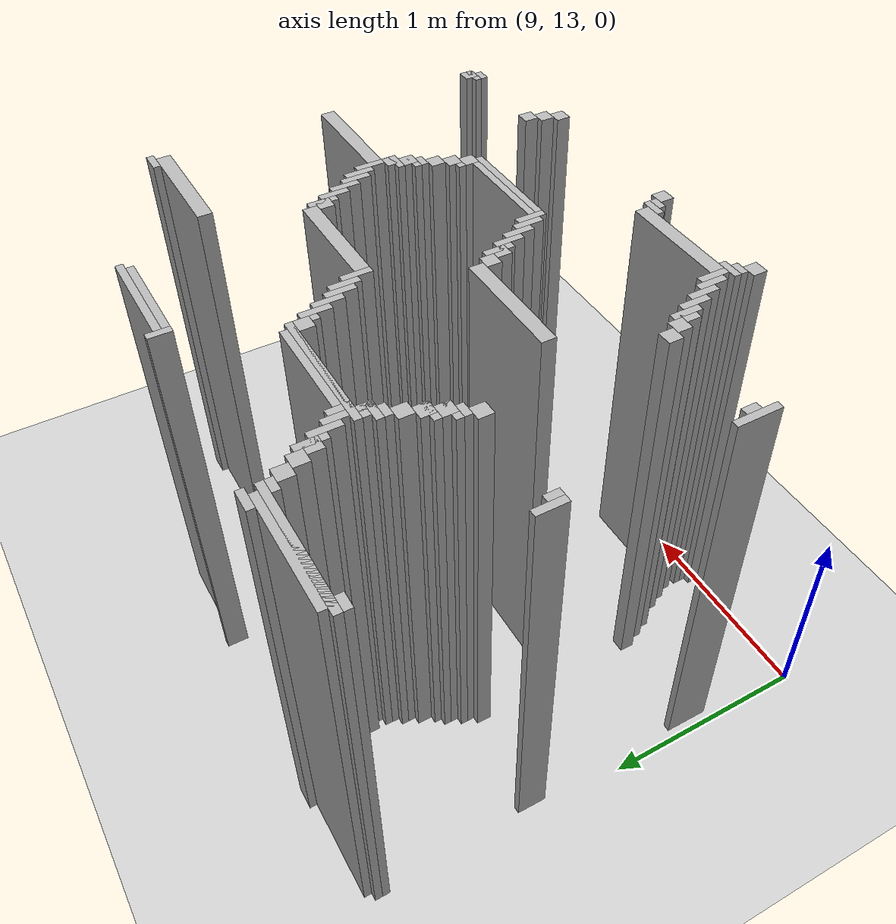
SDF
<sdf version="1.6">
 <world name="slam_world">
  <model name="ground_plane">
   <static>true</static>
   <link name="link">
    <collision name="collision">
     <geometry><plane><normal>0 0 1</normal><size>100 100</size></plane></geometry>
    </collision>
    <visual name="visual">
     <geometry><plane><normal>0 0 1</normal><size>100 100</size></plane></geometry>
     <material>
      <ambient>0.8 0.8 0.8 1</ambient>
      <diffuse>0.8 0.8 0.8 1</diffuse>
      <specular>0.8 0.8 0.8 1</specular>
     </material>
    </visual>
   </link>
  </model>
  <model name="wall_717">
   <static>true</static>
   <pose>9.588167053364268 15.295823665893272 1.0 0 0 0</pose>
   <link name="link">
    <collision name="collision">
     <geometry><box><size>0.10440835266821345 0.03480278422273782 2.0</size></box></geometry>
    </collision>
    <visual name="visual">
     <geometry><box><size>0.10440835266821345 0.03480278422273782 2.0</size></box></geometry>
     <material><ambient>0.5 0.5 0.5 1</ambient><diffuse>0.7 0.7 0.7 1</diffuse></material>
    </visual>
   </link>
  </model>
  <model name="wall_718">
   <static>true</static>
   <pose>10.562645011600928 15.261020881670532 1.0 0 0 0</pose>
   <link name="link">
    <collision name="collision">
     <geometry><box><size>0.03480278422273782 0.10440835266821345 2.0</size></box></geometry>
    </collision>
    <visual name="visual">
     <geometry><box><size>0.03480278422273782 0.10440835266821345 2.0</size></box></geometry>
     <material><ambient>0.5 0.5 0.5 1</ambient><diffuse>0.7 0.7 0.7 1</diffuse></material>
    </visual>
   </link>
  </model>
  <model name="wall_729">
   <static>true</static>
   <pose>9.327146171693736 15.243619489559164 1.0 0 0 0</pose>
   <link name="link">
    <collision name="collision">
     <geometry><box><size>0.5568445475638051 0.06960556844547564 2.0</size></box></geometry>
    </collision>
    <visual name="visual">
     <geometry><box><size>0.5568445475638051 0.06960556844547564 2.0</size></box></geometry>
     <material><ambient>0.5 0.5 0.5 1</ambient><diffuse>0.7 0.7 0.7 1</diffuse></material>
    </visual>
   </link>
  </model>
  <model name="wall_730">
   <static>true</static>
   <pose>10.82366589327146 15.261020881670532 1.0 0 0 0</pose>
   <link name="link">
    <collision name="collision">
     <geometry><box><size>0.4872389791183295 0.03480278422273782 2.0</size></box></geometry>
    </collision>
    <visual name="visual">
     <geometry><box><size>0.4872389791183295 0.03480278422273782 2.0</size></box></geometry>
     <material><ambient>0.5 0.5 0.5 1</ambient><diffuse>0.7 0.7 0.7 1</diffuse></material>
    </visual>
   </link>
  </model>
  <model name="wall_740">
   <static>true</static>
   <pose>9.327146171693736 15.226218097447795 1.0 0 0 0</pose>
   <link name="link">
    <collision name="collision">
     <geometry><box><size>0.6264501160092807 0.03480278422273782 2.0</size></box></geometry>
    </collision>
    <visual name="visual">
     <geometry><box><size>0.6264501160092807 0.03480278422273782 2.0</size></box></geometry>
     <material><ambient>0.5 0.5 0.5 1</ambient><diffuse>0.7 0.7 0.7 1</diffuse></material>
    </visual>
   </link>
  </model>
  <model name="wall_741">
   <static>true</static>
   <pose>10.806264501160092 15.226218097447795 1.0 0 0 0</pose>
   <link name="link">
    <collision name="collision">
     <geometry><box><size>0.4524361948955916 0.03480278422273782 2.0</size></box></geometry>
    </collision>
    <visual name="visual">
     <geometry><box><size>0.4524361948955916 0.03480278422273782 2.0</size></box></geometry>
     <material><ambient>0.5 0.5 0.5 1</ambient><diffuse>0.7 0.7 0.7 1</diffuse></material>
    </visual>
   </link>
  </model>
  <model name="wall_753">
   <static>true</static>
   <pose>9.048723897911833 15.191415313225058 1.0 0 0 0</pose>
   <link name="link">
    <collision name="collision">
     <geometry><box><size>0.06960556844547564 0.03480278422273782 2.0</size></box></geometry>
    </collision>
    <visual name="visual">
     <geometry><box><size>0.06960556844547564 0.03480278422273782 2.0</size></box></geometry>
     <material><ambient>0.5 0.5 0.5 1</ambient><diffuse>0.7 0.7 0.7 1</diffuse></material>
    </visual>
   </link>
  </model>
  <model name="wall_754">
   <static>true</static>
   <pose>9.605568445475638 15.191415313225058 1.0 0 0 0</pose>
   <link name="link">
    <collision name="collision">
     <geometry><box><size>0.06960556844547564 0.03480278422273782 2.0</size></box></geometry>
    </collision>
    <visual name="visual">
     <geometry><box><size>0.06960556844547564 0.03480278422273782 2.0</size></box></geometry>
     <material><ambient>0.5 0.5 0.5 1</ambient><diffuse>0.7 0.7 0.7 1</diffuse></material>
    </visual>
   </link>
  </model>
  <model name="wall_768">
   <static>true</static>
   <pose>9.640371229698376 15.139211136890951 1.0 0 0 0</pose>
   <link name="link">
    <collision name="collision">
     <geometry><box><size>0.06960556844547564 0.06960556844547564 2.0</size></box></geometry>
    </collision>
    <visual name="visual">
     <geometry><box><size>0.06960556844547564 0.06960556844547564 2.0</size></box></geometry>
     <material><ambient>0.5 0.5 0.5 1</ambient><diffuse>0.7 0.7 0.7 1</diffuse></material>
    </visual>
   </link>
  </model>
  <model name="wall_782">
   <static>true</static>
   <pose>9.675174013921113 15.069605568445475 1.0 0 0 0</pose>
   <link name="link">
    <collision name="collision">
     <geometry><box><size>0.06960556844547564 0.06960556844547564 2.0</size></box></geometry>
    </collision>
    <visual name="visual">
     <geometry><box><size>0.06960556844547564 0.06960556844547564 2.0</size></box></geometry>
     <material><ambient>0.5 0.5 0.5 1</ambient><diffuse>0.7 0.7 0.7 1</diffuse></material>
    </visual>
   </link>
  </model>
  <model name="wall_796">
   <static>true</static>
   <pose>9.72737819025522 15.0 1.0 0 0 0</pose>
   <link name="link">
    <collision name="collision">
     <geometry><box><size>0.03480278422273782 0.13921113689095127 2.0</size></box></geometry>
    </collision>
    <visual name="visual">
     <geometry><box><size>0.03480278422273782 0.13921113689095127 2.0</size></box></geometry>
     <material><ambient>0.5 0.5 0.5 1</ambient><diffuse>0.7 0.7 0.7 1</diffuse></material>
    </visual>
   </link>
  </model>
  <model name="wall_808">
   <static>true</static>
   <pose>9.70997679814385 15.0 1.0 0 0 0</pose>
   <link name="link">
    <collision name="collision">
     <geometry><box><size>0.06960556844547564 0.06960556844547564 2.0</size></box></geometry>
    </collision>
    <visual name="visual">
     <geometry><box><size>0.06960556844547564 0.06960556844547564 2.0</size></box></geometry>
     <material><ambient>0.5 0.5 0.5 1</ambient><diffuse>0.7 0.7 0.7 1</diffuse></material>
    </visual>
   </link>
  </model>
  <model name="wall_822">
   <static>true</static>
   <pose>9.762180974477959 14.930394431554523 1.0 0 0 0</pose>
   <link name="link">
    <collision name="collision">
     <geometry><box><size>0.03480278422273782 0.13921113689095127 2.0</size></box></geometry>
    </collision>
    <visual name="visual">
     <geometry><box><size>0.03480278422273782 0.13921113689095127 2.0</size></box></geometry>
     <material><ambient>0.5 0.5 0.5 1</ambient><diffuse>0.7 0.7 0.7 1</diffuse></material>
    </visual>
   </link>
  </model>
  <model name="wall_844">
   <static>true</static>
   <pose>9.796983758700696 14.825986078886311 1.0 0 0 0</pose>
   <link name="link">
    <collision name="collision">
     <geometry><box><size>0.03480278422273782 0.2088167053364269 2.0</size></box></geometry>
    </collision>
    <visual name="visual">
     <geometry><box><size>0.03480278422273782 0.2088167053364269 2.0</size></box></geometry>
     <material><ambient>0.5 0.5 0.5 1</ambient><diffuse>0.7 0.7 0.7 1</diffuse></material>
    </visual>
   </link>
  </model>
  <model name="wall_853">
   <static>true</static>
   <pose>9.831786542923433 14.84338747099768 1.0 0 0 0</pose>
   <link name="link">
    <collision name="collision">
     <geometry><box><size>0.03480278422273782 0.10440835266821345 2.0</size></box></geometry>
    </collision>
    <visual name="visual">
     <geometry><box><size>0.03480278422273782 0.10440835266821345 2.0</size></box></geometry>
     <material><ambient>0.5 0.5 0.5 1</ambient><diffuse>0.7 0.7 0.7 1</diffuse></material>
    </visual>
   </link>
  </model>
  <model name="wall_854">
   <static>true</static>
   <pose>11.780742459396752 14.878190255220417 1.0 0 0 0</pose>
   <link name="link">
    <collision name="collision">
     <geometry><box><size>0.10440835266821345 0.03480278422273782 2.0</size></box></geometry>
    </collision>
    <visual name="visual">
     <geometry><box><size>0.10440835266821345 0.03480278422273782 2.0</size></box></geometry>
     <material><ambient>0.5 0.5 0.5 1</ambient><diffuse>0.7 0.7 0.7 1</diffuse></material>
    </visual>
   </link>
  </model>
  <model name="wall_865">
   <static>true</static>
   <pose>10.092807424593968 14.825986078886311 1.0 0 0 0</pose>
   <link name="link">
    <collision name="collision">
     <geometry><box><size>0.4872389791183295 0.06960556844547564 2.0</size></box></geometry>
    </collision>
    <visual name="visual">
     <geometry><box><size>0.4872389791183295 0.06960556844547564 2.0</size></box></geometry>
     <material><ambient>0.5 0.5 0.5 1</ambient><diffuse>0.7 0.7 0.7 1</diffuse></material>
    </visual>
   </link>
  </model>
  <model name="wall_866">
   <static>true</static>
   <pose>11.519721577726218 14.825986078886311 1.0 0 0 0</pose>
   <link name="link">
    <collision name="collision">
     <geometry><box><size>0.5568445475638051 0.06960556844547564 2.0</size></box></geometry>
    </collision>
    <visual name="visual">
     <geometry><box><size>0.5568445475638051 0.06960556844547564 2.0</size></box></geometry>
     <material><ambient>0.5 0.5 0.5 1</ambient><diffuse>0.7 0.7 0.7 1</diffuse></material>
    </visual>
   </link>
  </model>
  <model name="wall_878">
   <static>true</static>
   <pose>10.058004640371228 14.80858468677494 1.0 0 0 0</pose>
   <link name="link">
    <collision name="collision">
     <geometry><box><size>0.6264501160092807 0.03480278422273782 2.0</size></box></geometry>
    </collision>
    <visual name="visual">
     <geometry><box><size>0.6264501160092807 0.03480278422273782 2.0</size></box></geometry>
     <material><ambient>0.5 0.5 0.5 1</ambient><diffuse>0.7 0.7 0.7 1</diffuse></material>
    </visual>
   </link>
  </model>
  <model name="wall_892">
   <static>true</static>
   <pose>9.779582366589327 14.756380510440835 1.0 0 0 0</pose>
   <link name="link">
    <collision name="collision">
     <geometry><box><size>0.06960556844547564 0.06960556844547564 2.0</size></box></geometry>
    </collision>
    <visual name="visual">
     <geometry><box><size>0.06960556844547564 0.06960556844547564 2.0</size></box></geometry>
     <material><ambient>0.5 0.5 0.5 1</ambient><diffuse>0.7 0.7 0.7 1</diffuse></material>
    </visual>
   </link>
  </model>
  <model name="wall_893">
   <static>true</static>
   <pose>10.336426914153131 14.756380510440835 1.0 0 0 0</pose>
   <link name="link">
    <collision name="collision">
     <geometry><box><size>0.06960556844547564 0.06960556844547564 2.0</size></box></geometry>
    </collision>
    <visual name="visual">
     <geometry><box><size>0.06960556844547564 0.06960556844547564 2.0</size></box></geometry>
     <material><ambient>0.5 0.5 0.5 1</ambient><diffuse>0.7 0.7 0.7 1</diffuse></material>
    </visual>
   </link>
  </model>
  <model name="wall_908">
   <static>true</static>
   <pose>9.762180974477959 14.738979118329466 1.0 0 0 0</pose>
   <link name="link">
    <collision name="collision">
     <geometry><box><size>0.10440835266821345 0.03480278422273782 2.0</size></box></geometry>
    </collision>
    <visual name="visual">
     <geometry><box><size>0.10440835266821345 0.03480278422273782 2.0</size></box></geometry>
     <material><ambient>0.5 0.5 0.5 1</ambient><diffuse>0.7 0.7 0.7 1</diffuse></material>
    </visual>
   </link>
  </model>
  <model name="wall_909">
   <static>true</static>
   <pose>10.38863109048724 14.68677494199536 1.0 0 0 0</pose>
   <link name="link">
    <collision name="collision">
     <geometry><box><size>0.03480278422273782 0.13921113689095127 2.0</size></box></geometry>
    </collision>
    <visual name="visual">
     <geometry><box><size>0.03480278422273782 0.13921113689095127 2.0</size></box></geometry>
     <material><ambient>0.5 0.5 0.5 1</ambient><diffuse>0.7 0.7 0.7 1</diffuse></material>
    </visual>
   </link>
  </model>
  <model name="wall_921">
   <static>true</static>
   <pose>9.744779582366588 14.704176334106728 1.0 0 0 0</pose>
   <link name="link">
    <collision name="collision">
     <geometry><box><size>0.06960556844547564 0.03480278422273782 2.0</size></box></geometry>
    </collision>
    <visual name="visual">
     <geometry><box><size>0.06960556844547564 0.03480278422273782 2.0</size></box></geometry>
     <material><ambient>0.5 0.5 0.5 1</ambient><diffuse>0.7 0.7 0.7 1</diffuse></material>
    </visual>
   </link>
  </model>
  <model name="wall_922">
   <static>true</static>
   <pose>10.37122969837587 14.704176334106728 1.0 0 0 0</pose>
   <link name="link">
    <collision name="collision">
     <geometry><box><size>0.06960556844547564 0.03480278422273782 2.0</size></box></geometry>
    </collision>
    <visual name="visual">
     <geometry><box><size>0.06960556844547564 0.03480278422273782 2.0</size></box></geometry>
     <material><ambient>0.5 0.5 0.5 1</ambient><diffuse>0.7 0.7 0.7 1</diffuse></material>
    </visual>
   </link>
  </model>
  <model name="wall_935">
   <static>true</static>
   <pose>9.70997679814385 14.65197215777262 1.0 0 0 0</pose>
   <link name="link">
    <collision name="collision">
     <geometry><box><size>0.06960556844547564 0.06960556844547564 2.0</size></box></geometry>
    </collision>
    <visual name="visual">
     <geometry><box><size>0.06960556844547564 0.06960556844547564 2.0</size></box></geometry>
     <material><ambient>0.5 0.5 0.5 1</ambient><diffuse>0.7 0.7 0.7 1</diffuse></material>
    </visual>
   </link>
  </model>
  <model name="wall_936">
   <static>true</static>
   <pose>10.423433874709977 14.617169373549883 1.0 0 0 0</pose>
   <link name="link">
    <collision name="collision">
     <geometry><box><size>0.03480278422273782 0.13921113689095127 2.0</size></box></geometry>
    </collision>
    <visual name="visual">
     <geometry><box><size>0.03480278422273782 0.13921113689095127 2.0</size></box></geometry>
     <material><ambient>0.5 0.5 0.5 1</ambient><diffuse>0.7 0.7 0.7 1</diffuse></material>
    </visual>
   </link>
  </model>
  <model name="wall_951">
   <static>true</static>
   <pose>9.675174013921113 14.582366589327146 1.0 0 0 0</pose>
   <link name="link">
    <collision name="collision">
     <geometry><box><size>0.06960556844547564 0.06960556844547564 2.0</size></box></geometry>
    </collision>
    <visual name="visual">
     <geometry><box><size>0.06960556844547564 0.06960556844547564 2.0</size></box></geometry>
     <material><ambient>0.5 0.5 0.5 1</ambient><diffuse>0.7 0.7 0.7 1</diffuse></material>
    </visual>
   </link>
  </model>
  <model name="wall_952">
   <static>true</static>
   <pose>10.458236658932714 14.547563805104408 1.0 0 0 0</pose>
   <link name="link">
    <collision name="collision">
     <geometry><box><size>0.03480278422273782 0.13921113689095127 2.0</size></box></geometry>
    </collision>
    <visual name="visual">
     <geometry><box><size>0.03480278422273782 0.13921113689095127 2.0</size></box></geometry>
     <material><ambient>0.5 0.5 0.5 1</ambient><diffuse>0.7 0.7 0.7 1</diffuse></material>
    </visual>
   </link>
  </model>
  <model name="wall_967">
   <static>true</static>
   <pose>9.657772621809745 14.564965197215777 1.0 0 0 0</pose>
   <link name="link">
    <collision name="collision">
     <geometry><box><size>0.10440835266821345 0.03480278422273782 2.0</size></box></geometry>
    </collision>
    <visual name="visual">
     <geometry><box><size>0.10440835266821345 0.03480278422273782 2.0</size></box></geometry>
     <material><ambient>0.5 0.5 0.5 1</ambient><diffuse>0.7 0.7 0.7 1</diffuse></material>
    </visual>
   </link>
  </model>
  <model name="wall_968">
   <static>true</static>
   <pose>10.493039443155451 14.512761020881669 1.0 0 0 0</pose>
   <link name="link">
    <collision name="collision">
     <geometry><box><size>0.03480278422273782 0.13921113689095127 2.0</size></box></geometry>
    </collision>
    <visual name="visual">
     <geometry><box><size>0.03480278422273782 0.13921113689095127 2.0</size></box></geometry>
     <material><ambient>0.5 0.5 0.5 1</ambient><diffuse>0.7 0.7 0.7 1</diffuse></material>
    </visual>
   </link>
  </model>
  <model name="wall_978">
   <static>true</static>
   <pose>9.640371229698376 14.512761020881669 1.0 0 0 0</pose>
   <link name="link">
    <collision name="collision">
     <geometry><box><size>0.06960556844547564 0.06960556844547564 2.0</size></box></geometry>
    </collision>
    <visual name="visual">
     <geometry><box><size>0.06960556844547564 0.06960556844547564 2.0</size></box></geometry>
     <material><ambient>0.5 0.5 0.5 1</ambient><diffuse>0.7 0.7 0.7 1</diffuse></material>
    </visual>
   </link>
  </model>
  <model name="wall_989">
   <static>true</static>
   <pose>9.066125290023201 14.443155452436194 1.0 0 0 0</pose>
   <link name="link">
    <collision name="collision">
     <geometry><box><size>0.03480278422273782 0.13921113689095127 2.0</size></box></geometry>
    </collision>
    <visual name="visual">
     <geometry><box><size>0.03480278422273782 0.13921113689095127 2.0</size></box></geometry>
     <material><ambient>0.5 0.5 0.5 1</ambient><diffuse>0.7 0.7 0.7 1</diffuse></material>
    </visual>
   </link>
  </model>
  <model name="wall_990">
   <static>true</static>
   <pose>9.622969837587007 14.4953596287703 1.0 0 0 0</pose>
   <link name="link">
    <collision name="collision">
     <geometry><box><size>0.10440835266821345 0.03480278422273782 2.0</size></box></geometry>
    </collision>
    <visual name="visual">
     <geometry><box><size>0.10440835266821345 0.03480278422273782 2.0</size></box></geometry>
     <material><ambient>0.5 0.5 0.5 1</ambient><diffuse>0.7 0.7 0.7 1</diffuse></material>
    </visual>
   </link>
  </model>
  <model name="wall_991">
   <static>true</static>
   <pose>10.52784222737819 14.443155452436194 1.0 0 0 0</pose>
   <link name="link">
    <collision name="collision">
     <geometry><box><size>0.03480278422273782 0.13921113689095127 2.0</size></box></geometry>
    </collision>
    <visual name="visual">
     <geometry><box><size>0.03480278422273782 0.13921113689095127 2.0</size></box></geometry>
     <material><ambient>0.5 0.5 0.5 1</ambient><diffuse>0.7 0.7 0.7 1</diffuse></material>
    </visual>
   </link>
  </model>
  <model name="wall_1001">
   <static>true</static>
   <pose>9.605568445475638 14.460556844547563 1.0 0 0 0</pose>
   <link name="link">
    <collision name="collision">
     <geometry><box><size>0.06960556844547564 0.03480278422273782 2.0</size></box></geometry>
    </collision>
    <visual name="visual">
     <geometry><box><size>0.06960556844547564 0.03480278422273782 2.0</size></box></geometry>
     <material><ambient>0.5 0.5 0.5 1</ambient><diffuse>0.7 0.7 0.7 1</diffuse></material>
    </visual>
   </link>
  </model>
  <model name="wall_1011">
   <static>true</static>
   <pose>9.100928074245939 14.408352668213457 1.0 0 0 0</pose>
   <link name="link">
    <collision name="collision">
     <geometry><box><size>0.03480278422273782 0.06960556844547564 2.0</size></box></geometry>
    </collision>
    <visual name="visual">
     <geometry><box><size>0.03480278422273782 0.06960556844547564 2.0</size></box></geometry>
     <material><ambient>0.5 0.5 0.5 1</ambient><diffuse>0.7 0.7 0.7 1</diffuse></material>
    </visual>
   </link>
  </model>
  <model name="wall_1012">
   <static>true</static>
   <pose>9.5707656612529 14.408352668213457 1.0 0 0 0</pose>
   <link name="link">
    <collision name="collision">
     <geometry><box><size>0.06960556844547564 0.06960556844547564 2.0</size></box></geometry>
    </collision>
    <visual name="visual">
     <geometry><box><size>0.06960556844547564 0.06960556844547564 2.0</size></box></geometry>
     <material><ambient>0.5 0.5 0.5 1</ambient><diffuse>0.7 0.7 0.7 1</diffuse></material>
    </visual>
   </link>
  </model>
  <model name="wall_1013">
   <static>true</static>
   <pose>10.806264501160092 14.408352668213457 1.0 0 0 0</pose>
   <link name="link">
    <collision name="collision">
     <geometry><box><size>0.5220417633410672 0.06960556844547564 2.0</size></box></geometry>
    </collision>
    <visual name="visual">
     <geometry><box><size>0.5220417633410672 0.06960556844547564 2.0</size></box></geometry>
     <material><ambient>0.5 0.5 0.5 1</ambient><diffuse>0.7 0.7 0.7 1</diffuse></material>
    </visual>
   </link>
  </model>
  <model name="wall_1026">
   <static>true</static>
   <pose>11.084686774941995 14.33874709976798 1.0 0 0 0</pose>
   <link name="link">
    <collision name="collision">
     <geometry><box><size>0.03480278422273782 0.13921113689095127 2.0</size></box></geometry>
    </collision>
    <visual name="visual">
     <geometry><box><size>0.03480278422273782 0.13921113689095127 2.0</size></box></geometry>
     <material><ambient>0.5 0.5 0.5 1</ambient><diffuse>0.7 0.7 0.7 1</diffuse></material>
    </visual>
   </link>
  </model>
  <model name="wall_1038">
   <static>true</static>
   <pose>11.067285382830626 14.33874709976798 1.0 0 0 0</pose>
   <link name="link">
    <collision name="collision">
     <geometry><box><size>0.06960556844547564 0.06960556844547564 2.0</size></box></geometry>
    </collision>
    <visual name="visual">
     <geometry><box><size>0.06960556844547564 0.06960556844547564 2.0</size></box></geometry>
     <material><ambient>0.5 0.5 0.5 1</ambient><diffuse>0.7 0.7 0.7 1</diffuse></material>
    </visual>
   </link>
  </model>
  <model name="wall_1050">
   <static>true</static>
   <pose>11.119489559164732 14.269141531322505 1.0 0 0 0</pose>
   <link name="link">
    <collision name="collision">
     <geometry><box><size>0.03480278422273782 0.13921113689095127 2.0</size></box></geometry>
    </collision>
    <visual name="visual">
     <geometry><box><size>0.03480278422273782 0.13921113689095127 2.0</size></box></geometry>
     <material><ambient>0.5 0.5 0.5 1</ambient><diffuse>0.7 0.7 0.7 1</diffuse></material>
    </visual>
   </link>
  </model>
  <model name="wall_1069">
   <static>true</static>
   <pose>11.154292343387471 14.199535962877029 1.0 0 0 0</pose>
   <link name="link">
    <collision name="collision">
     <geometry><box><size>0.03480278422273782 0.13921113689095127 2.0</size></box></geometry>
    </collision>
    <visual name="visual">
     <geometry><box><size>0.03480278422273782 0.13921113689095127 2.0</size></box></geometry>
     <material><ambient>0.5 0.5 0.5 1</ambient><diffuse>0.7 0.7 0.7 1</diffuse></material>
    </visual>
   </link>
  </model>
  <model name="wall_1081">
   <static>true</static>
   <pose>11.189095127610209 14.129930394431554 1.0 0 0 0</pose>
   <link name="link">
    <collision name="collision">
     <geometry><box><size>0.03480278422273782 0.13921113689095127 2.0</size></box></geometry>
    </collision>
    <visual name="visual">
     <geometry><box><size>0.03480278422273782 0.13921113689095127 2.0</size></box></geometry>
     <material><ambient>0.5 0.5 0.5 1</ambient><diffuse>0.7 0.7 0.7 1</diffuse></material>
    </visual>
   </link>
  </model>
  <model name="wall_1093">
   <static>true</static>
   <pose>11.223897911832946 14.095127610208817 1.0 0 0 0</pose>
   <link name="link">
    <collision name="collision">
     <geometry><box><size>0.03480278422273782 0.13921113689095127 2.0</size></box></geometry>
    </collision>
    <visual name="visual">
     <geometry><box><size>0.03480278422273782 0.13921113689095127 2.0</size></box></geometry>
     <material><ambient>0.5 0.5 0.5 1</ambient><diffuse>0.7 0.7 0.7 1</diffuse></material>
    </visual>
   </link>
  </model>
  <model name="wall_1112">
   <static>true</static>
   <pose>11.258700696055683 13.990719257540603 1.0 0 0 0</pose>
   <link name="link">
    <collision name="collision">
     <geometry><box><size>0.03480278422273782 0.2088167053364269 2.0</size></box></geometry>
    </collision>
    <visual name="visual">
     <geometry><box><size>0.03480278422273782 0.2088167053364269 2.0</size></box></geometry>
     <material><ambient>0.5 0.5 0.5 1</ambient><diffuse>0.7 0.7 0.7 1</diffuse></material>
    </visual>
   </link>
  </model>
  <model name="wall_1133">
   <static>true</static>
   <pose>10.058004640371228 13.990719257540603 1.0 0 0 0</pose>
   <link name="link">
    <collision name="collision">
     <geometry><box><size>0.5568445475638051 0.06960556844547564 2.0</size></box></geometry>
    </collision>
    <visual name="visual">
     <geometry><box><size>0.5568445475638051 0.06960556844547564 2.0</size></box></geometry>
     <material><ambient>0.5 0.5 0.5 1</ambient><diffuse>0.7 0.7 0.7 1</diffuse></material>
    </visual>
   </link>
  </model>
  <model name="wall_1134">
   <static>true</static>
   <pose>11.537122969837586 13.990719257540603 1.0 0 0 0</pose>
   <link name="link">
    <collision name="collision">
     <geometry><box><size>0.5220417633410672 0.06960556844547564 2.0</size></box></geometry>
    </collision>
    <visual name="visual">
     <geometry><box><size>0.5220417633410672 0.06960556844547564 2.0</size></box></geometry>
     <material><ambient>0.5 0.5 0.5 1</ambient><diffuse>0.7 0.7 0.7 1</diffuse></material>
    </visual>
   </link>
  </model>
  <model name="wall_1148">
   <static>true</static>
   <pose>10.336426914153131 13.921113689095128 1.0 0 0 0</pose>
   <link name="link">
    <collision name="collision">
     <geometry><box><size>0.06960556844547564 0.06960556844547564 2.0</size></box></geometry>
    </collision>
    <visual name="visual">
     <geometry><box><size>0.06960556844547564 0.06960556844547564 2.0</size></box></geometry>
     <material><ambient>0.5 0.5 0.5 1</ambient><diffuse>0.7 0.7 0.7 1</diffuse></material>
    </visual>
   </link>
  </model>
  <model name="wall_1149">
   <static>true</static>
   <pose>11.241299303944315 13.921113689095128 1.0 0 0 0</pose>
   <link name="link">
    <collision name="collision">
     <geometry><box><size>0.06960556844547564 0.06960556844547564 2.0</size></box></geometry>
    </collision>
    <visual name="visual">
     <geometry><box><size>0.06960556844547564 0.06960556844547564 2.0</size></box></geometry>
     <material><ambient>0.5 0.5 0.5 1</ambient><diffuse>0.7 0.7 0.7 1</diffuse></material>
    </visual>
   </link>
  </model>
  <model name="wall_1165">
   <static>true</static>
   <pose>10.38863109048724 13.851508120649651 1.0 0 0 0</pose>
   <link name="link">
    <collision name="collision">
     <geometry><box><size>0.03480278422273782 0.13921113689095127 2.0</size></box></geometry>
    </collision>
    <visual name="visual">
     <geometry><box><size>0.03480278422273782 0.13921113689095127 2.0</size></box></geometry>
     <material><ambient>0.5 0.5 0.5 1</ambient><diffuse>0.7 0.7 0.7 1</diffuse></material>
    </visual>
   </link>
  </model>
  <model name="wall_1166">
   <static>true</static>
   <pose>11.223897911832946 13.903712296983759 1.0 0 0 0</pose>
   <link name="link">
    <collision name="collision">
     <geometry><box><size>0.10440835266821345 0.03480278422273782 2.0</size></box></geometry>
    </collision>
    <visual name="visual">
     <geometry><box><size>0.10440835266821345 0.03480278422273782 2.0</size></box></geometry>
     <material><ambient>0.5 0.5 0.5 1</ambient><diffuse>0.7 0.7 0.7 1</diffuse></material>
    </visual>
   </link>
  </model>
  <model name="wall_1182">
   <static>true</static>
   <pose>10.37122969837587 13.851508120649651 1.0 0 0 0</pose>
   <link name="link">
    <collision name="collision">
     <geometry><box><size>0.06960556844547564 0.06960556844547564 2.0</size></box></geometry>
    </collision>
    <visual name="visual">
     <geometry><box><size>0.06960556844547564 0.06960556844547564 2.0</size></box></geometry>
     <material><ambient>0.5 0.5 0.5 1</ambient><diffuse>0.7 0.7 0.7 1</diffuse></material>
    </visual>
   </link>
  </model>
  <model name="wall_1183">
   <static>true</static>
   <pose>11.206496519721577 13.851508120649651 1.0 0 0 0</pose>
   <link name="link">
    <collision name="collision">
     <geometry><box><size>0.06960556844547564 0.06960556844547564 2.0</size></box></geometry>
    </collision>
    <visual name="visual">
     <geometry><box><size>0.06960556844547564 0.06960556844547564 2.0</size></box></geometry>
     <material><ambient>0.5 0.5 0.5 1</ambient><diffuse>0.7 0.7 0.7 1</diffuse></material>
    </visual>
   </link>
  </model>
  <model name="wall_1199">
   <static>true</static>
   <pose>10.423433874709977 13.781902552204176 1.0 0 0 0</pose>
   <link name="link">
    <collision name="collision">
     <geometry><box><size>0.03480278422273782 0.13921113689095127 2.0</size></box></geometry>
    </collision>
    <visual name="visual">
     <geometry><box><size>0.03480278422273782 0.13921113689095127 2.0</size></box></geometry>
     <material><ambient>0.5 0.5 0.5 1</ambient><diffuse>0.7 0.7 0.7 1</diffuse></material>
    </visual>
   </link>
  </model>
  <model name="wall_1200">
   <static>true</static>
   <pose>11.189095127610209 13.834106728538282 1.0 0 0 0</pose>
   <link name="link">
    <collision name="collision">
     <geometry><box><size>0.10440835266821345 0.03480278422273782 2.0</size></box></geometry>
    </collision>
    <visual name="visual">
     <geometry><box><size>0.10440835266821345 0.03480278422273782 2.0</size></box></geometry>
     <material><ambient>0.5 0.5 0.5 1</ambient><diffuse>0.7 0.7 0.7 1</diffuse></material>
    </visual>
   </link>
  </model>
  <model name="wall_1209">
   <static>true</static>
   <pose>11.17169373549884 13.799303944315545 1.0 0 0 0</pose>
   <link name="link">
    <collision name="collision">
     <geometry><box><size>0.06960556844547564 0.03480278422273782 2.0</size></box></geometry>
    </collision>
    <visual name="visual">
     <geometry><box><size>0.06960556844547564 0.03480278422273782 2.0</size></box></geometry>
     <material><ambient>0.5 0.5 0.5 1</ambient><diffuse>0.7 0.7 0.7 1</diffuse></material>
    </visual>
   </link>
  </model>
  <model name="wall_1222">
   <static>true</static>
   <pose>10.458236658932714 13.7122969837587 1.0 0 0 0</pose>
   <link name="link">
    <collision name="collision">
     <geometry><box><size>0.03480278422273782 0.13921113689095127 2.0</size></box></geometry>
    </collision>
    <visual name="visual">
     <geometry><box><size>0.03480278422273782 0.13921113689095127 2.0</size></box></geometry>
     <material><ambient>0.5 0.5 0.5 1</ambient><diffuse>0.7 0.7 0.7 1</diffuse></material>
    </visual>
   </link>
  </model>
  <model name="wall_1223">
   <static>true</static>
   <pose>11.1368909512761 13.747099767981437 1.0 0 0 0</pose>
   <link name="link">
    <collision name="collision">
     <geometry><box><size>0.06960556844547564 0.06960556844547564 2.0</size></box></geometry>
    </collision>
    <visual name="visual">
     <geometry><box><size>0.06960556844547564 0.06960556844547564 2.0</size></box></geometry>
     <material><ambient>0.5 0.5 0.5 1</ambient><diffuse>0.7 0.7 0.7 1</diffuse></material>
    </visual>
   </link>
  </model>
  <model name="wall_1239">
   <static>true</static>
   <pose>10.493039443155451 13.642691415313225 1.0 0 0 0</pose>
   <link name="link">
    <collision name="collision">
     <geometry><box><size>0.03480278422273782 0.13921113689095127 2.0</size></box></geometry>
    </collision>
    <visual name="visual">
     <geometry><box><size>0.03480278422273782 0.13921113689095127 2.0</size></box></geometry>
     <material><ambient>0.5 0.5 0.5 1</ambient><diffuse>0.7 0.7 0.7 1</diffuse></material>
    </visual>
   </link>
  </model>
  <model name="wall_1240">
   <static>true</static>
   <pose>11.102088167053363 13.677494199535962 1.0 0 0 0</pose>
   <link name="link">
    <collision name="collision">
     <geometry><box><size>0.06960556844547564 0.06960556844547564 2.0</size></box></geometry>
    </collision>
    <visual name="visual">
     <geometry><box><size>0.06960556844547564 0.06960556844547564 2.0</size></box></geometry>
     <material><ambient>0.5 0.5 0.5 1</ambient><diffuse>0.7 0.7 0.7 1</diffuse></material>
    </visual>
   </link>
  </model>
  <model name="wall_1255">
   <static>true</static>
   <pose>9.066125290023201 13.573085846867748 1.0 0 0 0</pose>
   <link name="link">
    <collision name="collision">
     <geometry><box><size>0.03480278422273782 0.2088167053364269 2.0</size></box></geometry>
    </collision>
    <visual name="visual">
     <geometry><box><size>0.03480278422273782 0.2088167053364269 2.0</size></box></geometry>
     <material><ambient>0.5 0.5 0.5 1</ambient><diffuse>0.7 0.7 0.7 1</diffuse></material>
    </visual>
   </link>
  </model>
  <model name="wall_1256">
   <static>true</static>
   <pose>10.52784222737819 13.607888631090487 1.0 0 0 0</pose>
   <link name="link">
    <collision name="collision">
     <geometry><box><size>0.03480278422273782 0.13921113689095127 2.0</size></box></geometry>
    </collision>
    <visual name="visual">
     <geometry><box><size>0.03480278422273782 0.13921113689095127 2.0</size></box></geometry>
     <material><ambient>0.5 0.5 0.5 1</ambient><diffuse>0.7 0.7 0.7 1</diffuse></material>
    </visual>
   </link>
  </model>
  <model name="wall_1257">
   <static>true</static>
   <pose>11.084686774941995 13.660092807424594 1.0 0 0 0</pose>
   <link name="link">
    <collision name="collision">
     <geometry><box><size>0.10440835266821345 0.03480278422273782 2.0</size></box></geometry>
    </collision>
    <visual name="visual">
     <geometry><box><size>0.10440835266821345 0.03480278422273782 2.0</size></box></geometry>
     <material><ambient>0.5 0.5 0.5 1</ambient><diffuse>0.7 0.7 0.7 1</diffuse></material>
    </visual>
   </link>
  </model>
  <model name="wall_1266">
   <static>true</static>
   <pose>11.067285382830626 13.607888631090487 1.0 0 0 0</pose>
   <link name="link">
    <collision name="collision">
     <geometry><box><size>0.06960556844547564 0.06960556844547564 2.0</size></box></geometry>
    </collision>
    <visual name="visual">
     <geometry><box><size>0.06960556844547564 0.06960556844547564 2.0</size></box></geometry>
     <material><ambient>0.5 0.5 0.5 1</ambient><diffuse>0.7 0.7 0.7 1</diffuse></material>
    </visual>
   </link>
  </model>
  <model name="wall_1277">
   <static>true</static>
   <pose>9.100928074245939 13.573085846867748 1.0 0 0 0</pose>
   <link name="link">
    <collision name="collision">
     <geometry><box><size>0.03480278422273782 0.06960556844547564 2.0</size></box></geometry>
    </collision>
    <visual name="visual">
     <geometry><box><size>0.03480278422273782 0.06960556844547564 2.0</size></box></geometry>
     <material><ambient>0.5 0.5 0.5 1</ambient><diffuse>0.7 0.7 0.7 1</diffuse></material>
    </visual>
   </link>
  </model>
  <model name="wall_1278">
   <static>true</static>
   <pose>9.5707656612529 13.573085846867748 1.0 0 0 0</pose>
   <link name="link">
    <collision name="collision">
     <geometry><box><size>0.06960556844547564 0.06960556844547564 2.0</size></box></geometry>
    </collision>
    <visual name="visual">
     <geometry><box><size>0.06960556844547564 0.06960556844547564 2.0</size></box></geometry>
     <material><ambient>0.5 0.5 0.5 1</ambient><diffuse>0.7 0.7 0.7 1</diffuse></material>
    </visual>
   </link>
  </model>
  <model name="wall_1279">
   <static>true</static>
   <pose>10.82366589327146 13.590487238979117 1.0 0 0 0</pose>
   <link name="link">
    <collision name="collision">
     <geometry><box><size>0.5568445475638051 0.03480278422273782 2.0</size></box></geometry>
    </collision>
    <visual name="visual">
     <geometry><box><size>0.5568445475638051 0.03480278422273782 2.0</size></box></geometry>
     <material><ambient>0.5 0.5 0.5 1</ambient><diffuse>0.7 0.7 0.7 1</diffuse></material>
    </visual>
   </link>
  </model>
  <model name="wall_1287">
   <static>true</static>
   <pose>10.806264501160092 13.55568445475638 1.0 0 0 0</pose>
   <link name="link">
    <collision name="collision">
     <geometry><box><size>0.5220417633410672 0.03480278422273782 2.0</size></box></geometry>
    </collision>
    <visual name="visual">
     <geometry><box><size>0.5220417633410672 0.03480278422273782 2.0</size></box></geometry>
     <material><ambient>0.5 0.5 0.5 1</ambient><diffuse>0.7 0.7 0.7 1</diffuse></material>
    </visual>
   </link>
  </model>
  <model name="wall_1300">
   <static>true</static>
   <pose>9.605568445475638 13.503480278422273 1.0 0 0 0</pose>
   <link name="link">
    <collision name="collision">
     <geometry><box><size>0.06960556844547564 0.06960556844547564 2.0</size></box></geometry>
    </collision>
    <visual name="visual">
     <geometry><box><size>0.06960556844547564 0.06960556844547564 2.0</size></box></geometry>
     <material><ambient>0.5 0.5 0.5 1</ambient><diffuse>0.7 0.7 0.7 1</diffuse></material>
    </visual>
   </link>
  </model>
  <model name="wall_1314">
   <static>true</static>
   <pose>9.657772621809745 13.433874709976797 1.0 0 0 0</pose>
   <link name="link">
    <collision name="collision">
     <geometry><box><size>0.03480278422273782 0.13921113689095127 2.0</size></box></geometry>
    </collision>
    <visual name="visual">
     <geometry><box><size>0.03480278422273782 0.13921113689095127 2.0</size></box></geometry>
     <material><ambient>0.5 0.5 0.5 1</ambient><diffuse>0.7 0.7 0.7 1</diffuse></material>
    </visual>
   </link>
  </model>
  <model name="wall_1328">
   <static>true</static>
   <pose>9.640371229698376 13.433874709976797 1.0 0 0 0</pose>
   <link name="link">
    <collision name="collision">
     <geometry><box><size>0.06960556844547564 0.06960556844547564 2.0</size></box></geometry>
    </collision>
    <visual name="visual">
     <geometry><box><size>0.06960556844547564 0.06960556844547564 2.0</size></box></geometry>
     <material><ambient>0.5 0.5 0.5 1</ambient><diffuse>0.7 0.7 0.7 1</diffuse></material>
    </visual>
   </link>
  </model>
  <model name="wall_1342">
   <static>true</static>
   <pose>9.692575406032482 13.364269141531322 1.0 0 0 0</pose>
   <link name="link">
    <collision name="collision">
     <geometry><box><size>0.03480278422273782 0.13921113689095127 2.0</size></box></geometry>
    </collision>
    <visual name="visual">
     <geometry><box><size>0.03480278422273782 0.13921113689095127 2.0</size></box></geometry>
     <material><ambient>0.5 0.5 0.5 1</ambient><diffuse>0.7 0.7 0.7 1</diffuse></material>
    </visual>
   </link>
  </model>
  <model name="wall_1363">
   <static>true</static>
   <pose>9.72737819025522 13.294663573085847 1.0 0 0 0</pose>
   <link name="link">
    <collision name="collision">
     <geometry><box><size>0.03480278422273782 0.13921113689095127 2.0</size></box></geometry>
    </collision>
    <visual name="visual">
     <geometry><box><size>0.03480278422273782 0.13921113689095127 2.0</size></box></geometry>
     <material><ambient>0.5 0.5 0.5 1</ambient><diffuse>0.7 0.7 0.7 1</diffuse></material>
    </visual>
   </link>
  </model>
  <model name="wall_1377">
   <static>true</static>
   <pose>9.762180974477959 13.22505800464037 1.0 0 0 0</pose>
   <link name="link">
    <collision name="collision">
     <geometry><box><size>0.03480278422273782 0.13921113689095127 2.0</size></box></geometry>
    </collision>
    <visual name="visual">
     <geometry><box><size>0.03480278422273782 0.13921113689095127 2.0</size></box></geometry>
     <material><ambient>0.5 0.5 0.5 1</ambient><diffuse>0.7 0.7 0.7 1</diffuse></material>
    </visual>
   </link>
  </model>
  <model name="wall_1391">
   <static>true</static>
   <pose>9.796983758700696 13.155452436194896 1.0 0 0 0</pose>
   <link name="link">
    <collision name="collision">
     <geometry><box><size>0.03480278422273782 0.2088167053364269 2.0</size></box></geometry>
    </collision>
    <visual name="visual">
     <geometry><box><size>0.03480278422273782 0.2088167053364269 2.0</size></box></geometry>
     <material><ambient>0.5 0.5 0.5 1</ambient><diffuse>0.7 0.7 0.7 1</diffuse></material>
    </visual>
   </link>
  </model>
  <model name="wall_1400">
   <static>true</static>
   <pose>11.79814385150812 13.190255220417633 1.0 0 0 0</pose>
   <link name="link">
    <collision name="collision">
     <geometry><box><size>0.06960556844547564 0.06960556844547564 2.0</size></box></geometry>
    </collision>
    <visual name="visual">
     <geometry><box><size>0.06960556844547564 0.06960556844547564 2.0</size></box></geometry>
     <material><ambient>0.5 0.5 0.5 1</ambient><diffuse>0.7 0.7 0.7 1</diffuse></material>
    </visual>
   </link>
  </model>
  <model name="wall_1412">
   <static>true</static>
   <pose>10.075406032482599 13.155452436194896 1.0 0 0 0</pose>
   <link name="link">
    <collision name="collision">
     <geometry><box><size>0.5220417633410672 0.06960556844547564 2.0</size></box></geometry>
    </collision>
    <visual name="visual">
     <geometry><box><size>0.5220417633410672 0.06960556844547564 2.0</size></box></geometry>
     <material><ambient>0.5 0.5 0.5 1</ambient><diffuse>0.7 0.7 0.7 1</diffuse></material>
    </visual>
   </link>
  </model>
  <model name="wall_1413">
   <static>true</static>
   <pose>11.276102088167052 13.155452436194896 1.0 0 0 0</pose>
   <link name="link">
    <collision name="collision">
     <geometry><box><size>0.06960556844547564 0.06960556844547564 2.0</size></box></geometry>
    </collision>
    <visual name="visual">
     <geometry><box><size>0.06960556844547564 0.06960556844547564 2.0</size></box></geometry>
     <material><ambient>0.5 0.5 0.5 1</ambient><diffuse>0.7 0.7 0.7 1</diffuse></material>
    </visual>
   </link>
  </model>
  <model name="wall_1414">
   <static>true</static>
   <pose>11.780742459396752 13.172853828306264 1.0 0 0 0</pose>
   <link name="link">
    <collision name="collision">
     <geometry><box><size>0.10440835266821345 0.03480278422273782 2.0</size></box></geometry>
    </collision>
    <visual name="visual">
     <geometry><box><size>0.10440835266821345 0.03480278422273782 2.0</size></box></geometry>
     <material><ambient>0.5 0.5 0.5 1</ambient><diffuse>0.7 0.7 0.7 1</diffuse></material>
    </visual>
   </link>
  </model>
  <model name="wall_1424">
   <static>true</static>
   <pose>11.763341067285383 13.138051044083527 1.0 0 0 0</pose>
   <link name="link">
    <collision name="collision">
     <geometry><box><size>0.06960556844547564 0.03480278422273782 2.0</size></box></geometry>
    </collision>
    <visual name="visual">
     <geometry><box><size>0.06960556844547564 0.03480278422273782 2.0</size></box></geometry>
     <material><ambient>0.5 0.5 0.5 1</ambient><diffuse>0.7 0.7 0.7 1</diffuse></material>
    </visual>
   </link>
  </model>
  <model name="wall_1435">
   <static>true</static>
   <pose>9.796983758700696 13.103248259860788 1.0 0 0 0</pose>
   <link name="link">
    <collision name="collision">
     <geometry><box><size>0.10440835266821345 0.03480278422273782 2.0</size></box></geometry>
    </collision>
    <visual name="visual">
     <geometry><box><size>0.10440835266821345 0.03480278422273782 2.0</size></box></geometry>
     <material><ambient>0.5 0.5 0.5 1</ambient><diffuse>0.7 0.7 0.7 1</diffuse></material>
    </visual>
   </link>
  </model>
  <model name="wall_1436">
   <static>true</static>
   <pose>10.319025522041763 13.103248259860788 1.0 0 0 0</pose>
   <link name="link">
    <collision name="collision">
     <geometry><box><size>0.10440835266821345 0.03480278422273782 2.0</size></box></geometry>
    </collision>
    <visual name="visual">
     <geometry><box><size>0.10440835266821345 0.03480278422273782 2.0</size></box></geometry>
     <material><ambient>0.5 0.5 0.5 1</ambient><diffuse>0.7 0.7 0.7 1</diffuse></material>
    </visual>
   </link>
  </model>
  <model name="wall_1437">
   <static>true</static>
   <pose>11.241299303944315 13.085846867749419 1.0 0 0 0</pose>
   <link name="link">
    <collision name="collision">
     <geometry><box><size>0.06960556844547564 0.06960556844547564 2.0</size></box></geometry>
    </collision>
    <visual name="visual">
     <geometry><box><size>0.06960556844547564 0.06960556844547564 2.0</size></box></geometry>
     <material><ambient>0.5 0.5 0.5 1</ambient><diffuse>0.7 0.7 0.7 1</diffuse></material>
    </visual>
   </link>
  </model>
  <model name="wall_1446">
   <static>true</static>
   <pose>9.779582366589327 13.06844547563805 1.0 0 0 0</pose>
   <link name="link">
    <collision name="collision">
     <geometry><box><size>0.06960556844547564 0.03480278422273782 2.0</size></box></geometry>
    </collision>
    <visual name="visual">
     <geometry><box><size>0.06960556844547564 0.03480278422273782 2.0</size></box></geometry>
     <material><ambient>0.5 0.5 0.5 1</ambient><diffuse>0.7 0.7 0.7 1</diffuse></material>
    </visual>
   </link>
  </model>
  <model name="wall_1447">
   <static>true</static>
   <pose>10.336426914153131 13.06844547563805 1.0 0 0 0</pose>
   <link name="link">
    <collision name="collision">
     <geometry><box><size>0.06960556844547564 0.03480278422273782 2.0</size></box></geometry>
    </collision>
    <visual name="visual">
     <geometry><box><size>0.06960556844547564 0.03480278422273782 2.0</size></box></geometry>
     <material><ambient>0.5 0.5 0.5 1</ambient><diffuse>0.7 0.7 0.7 1</diffuse></material>
    </visual>
   </link>
  </model>
  <model name="wall_1457">
   <static>true</static>
   <pose>9.744779582366588 13.016241299303944 1.0 0 0 0</pose>
   <link name="link">
    <collision name="collision">
     <geometry><box><size>0.06960556844547564 0.06960556844547564 2.0</size></box></geometry>
    </collision>
    <visual name="visual">
     <geometry><box><size>0.06960556844547564 0.06960556844547564 2.0</size></box></geometry>
     <material><ambient>0.5 0.5 0.5 1</ambient><diffuse>0.7 0.7 0.7 1</diffuse></material>
    </visual>
   </link>
  </model>
  <model name="wall_1458">
   <static>true</static>
   <pose>10.37122969837587 13.016241299303944 1.0 0 0 0</pose>
   <link name="link">
    <collision name="collision">
     <geometry><box><size>0.06960556844547564 0.06960556844547564 2.0</size></box></geometry>
    </collision>
    <visual name="visual">
     <geometry><box><size>0.06960556844547564 0.06960556844547564 2.0</size></box></geometry>
     <material><ambient>0.5 0.5 0.5 1</ambient><diffuse>0.7 0.7 0.7 1</diffuse></material>
    </visual>
   </link>
  </model>
  <model name="wall_1459">
   <static>true</static>
   <pose>11.206496519721577 13.016241299303944 1.0 0 0 0</pose>
   <link name="link">
    <collision name="collision">
     <geometry><box><size>0.06960556844547564 0.06960556844547564 2.0</size></box></geometry>
    </collision>
    <visual name="visual">
     <geometry><box><size>0.06960556844547564 0.06960556844547564 2.0</size></box></geometry>
     <material><ambient>0.5 0.5 0.5 1</ambient><diffuse>0.7 0.7 0.7 1</diffuse></material>
    </visual>
   </link>
  </model>
 </world>
</sdf>
